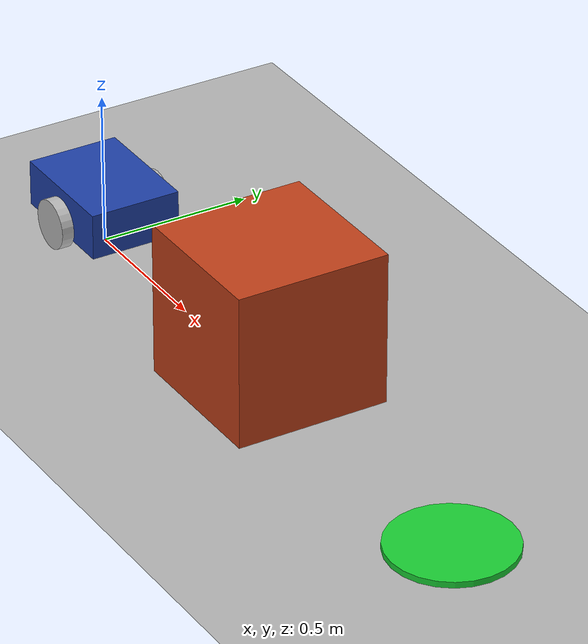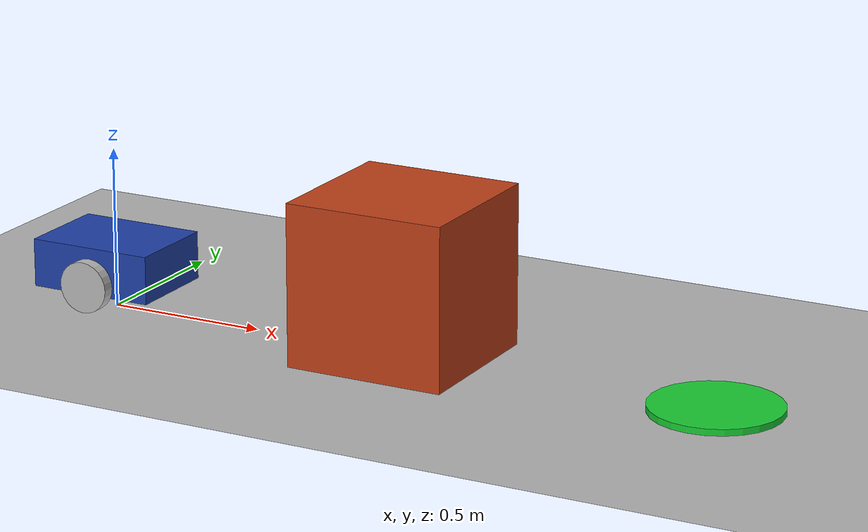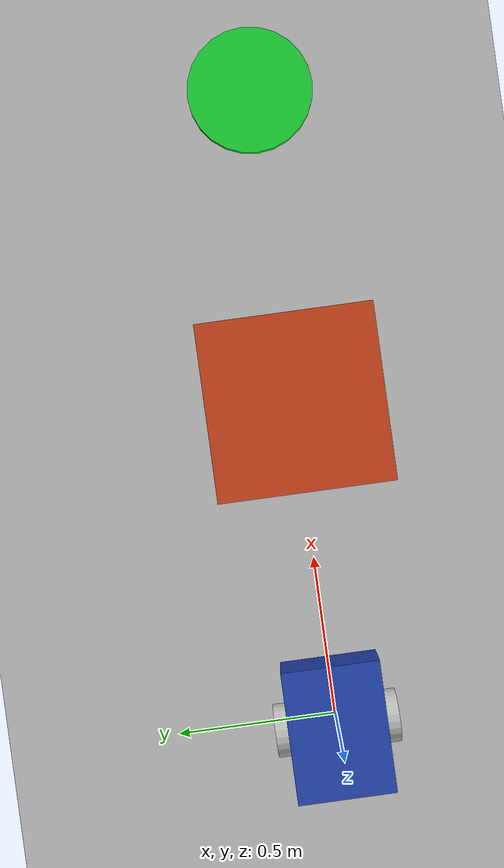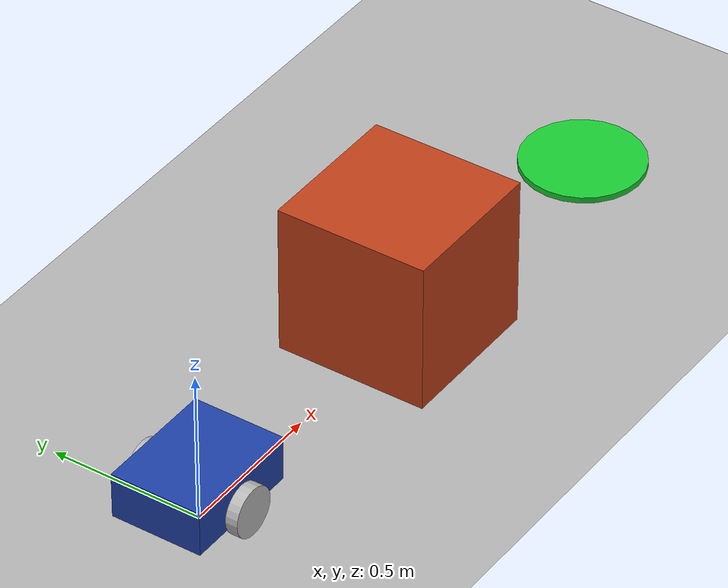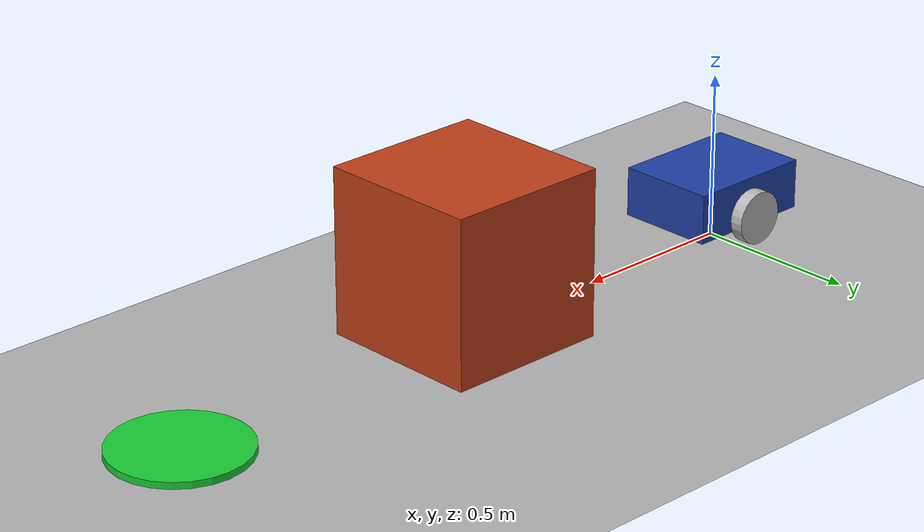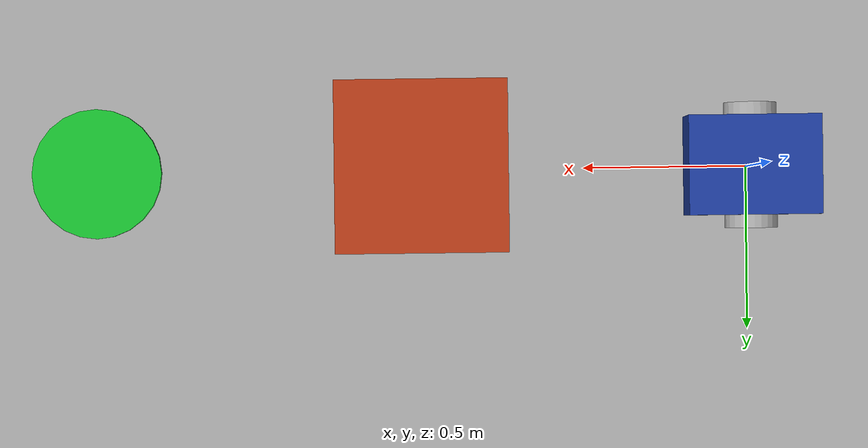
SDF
<?xml version="1.0" ?>
<sdf version="1.9">
  <world name="synapse_navigation">
    <plugin filename="gz-sim-physics-system" name="gz::sim::systems::Physics"/>
    <plugin filename="gz-sim-user-commands-system" name="gz::sim::systems::UserCommands"/>
    <plugin filename="gz-sim-scene-broadcaster-system" name="gz::sim::systems::SceneBroadcaster"/>
    <plugin filename="gz-sim-sensors-system" name="gz::sim::systems::Sensors">
      <render_engine>ogre2</render_engine>
    </plugin>

    <gravity>0 0 -9.8</gravity>
    <physics name="step" type="ignored">
      <max_step_size>0.001</max_step_size>
      <real_time_factor>1.0</real_time_factor>
    </physics>

    <light name="sun" type="directional">
      <cast_shadows>true</cast_shadows>
      <pose>0 0 10 0 0 0</pose>
      <diffuse>0.8 0.8 0.8 1</diffuse>
      <specular>0.2 0.2 0.2 1</specular>
      <direction>-0.5 0.1 -0.9</direction>
    </light>

    <model name="ground">
      <static>true</static>
      <link name="ground_link">
        <collision name="collision">
          <geometry><plane><normal>0 0 1</normal><size>20 20</size></plane></geometry>
        </collision>
        <visual name="visual">
          <geometry><plane><normal>0 0 1</normal><size>20 20</size></plane></geometry>
          <material><diffuse>0.7 0.7 0.7 1</diffuse></material>
        </visual>
      </link>
    </model>

    <model name="crate">
      <static>true</static>
      <pose>1 0 0.25 0 0 0</pose>
      <link name="crate_link">
        <collision name="collision">
          <geometry><box><size>0.5 0.5 0.5</size></box></geometry>
        </collision>
        <visual name="visual">
          <geometry><box><size>0.5 0.5 0.5</size></box></geometry>
          <material><diffuse>0.75 0.25 0.1 1</diffuse></material>
        </visual>
      </link>
    </model>

    <model name="goal">
      <static>true</static>
      <pose>2 0 0.01 0 0 0</pose>
      <link name="goal_link">
        <visual name="visual">
          <geometry><cylinder><radius>0.2</radius><length>0.02</length></cylinder></geometry>
          <material><diffuse>0.1 0.8 0.2 1</diffuse><emissive>0.05 0.4 0.1 1</emissive></material>
        </visual>
      </link>
    </model>

    <model name="synapse_bot">
      <pose>0 0 0.15 0 0 0</pose>
      <link name="base_link">
        <inertial><mass>5</mass><inertia><ixx>0.05</ixx><iyy>0.08</iyy><izz>0.1</izz></inertia></inertial>
        <collision name="collision"><geometry><box><size>0.4 0.3 0.15</size></box></geometry></collision>
        <visual name="visual">
          <geometry><box><size>0.4 0.3 0.15</size></box></geometry>
          <material><diffuse>0.12 0.25 0.65 1</diffuse></material>
        </visual>
      </link>

      <link name="left_wheel">
        <pose relative_to="base_link">0 0.17 -0.04 1.5708 0 0</pose>
        <inertial><mass>0.3</mass><inertia><ixx>0.001</ixx><iyy>0.001</iyy><izz>0.001</izz></inertia></inertial>
        <collision name="collision"><geometry><cylinder><radius>0.08</radius><length>0.04</length></cylinder></geometry></collision>
        <visual name="visual"><geometry><cylinder><radius>0.08</radius><length>0.04</length></cylinder></geometry></visual>
      </link>
      <link name="right_wheel">
        <pose relative_to="base_link">0 -0.17 -0.04 1.5708 0 0</pose>
        <inertial><mass>0.3</mass><inertia><ixx>0.001</ixx><iyy>0.001</iyy><izz>0.001</izz></inertia></inertial>
        <collision name="collision"><geometry><cylinder><radius>0.08</radius><length>0.04</length></cylinder></geometry></collision>
        <visual name="visual"><geometry><cylinder><radius>0.08</radius><length>0.04</length></cylinder></geometry></visual>
      </link>
      <joint name="left_wheel_joint" type="revolute">
        <parent>base_link</parent><child>left_wheel</child><axis><xyz>0 1 0</xyz></axis>
      </joint>
      <joint name="right_wheel_joint" type="revolute">
        <parent>base_link</parent><child>right_wheel</child><axis><xyz>0 1 0</xyz></axis>
      </joint>

      <link name="caster">
        <pose relative_to="base_link">-0.14 0 -0.075 0 0 0</pose>
        <inertial><mass>0.1</mass><inertia><ixx>0.0001</ixx><iyy>0.0001</iyy><izz>0.0001</izz></inertia></inertial>
        <collision name="collision"><geometry><sphere><radius>0.035</radius></sphere></geometry></collision>
        <visual name="visual"><geometry><sphere><radius>0.035</radius></sphere></geometry></visual>
      </link>
      <joint name="caster_joint" type="fixed"><parent>base_link</parent><child>caster</child></joint>

      <link name="camera_link">
        <pose relative_to="base_link">0.2 0 0.12 0 0 0</pose>
        <inertial><mass>0.05</mass><inertia><ixx>0.0001</ixx><iyy>0.0001</iyy><izz>0.0001</izz></inertia></inertial>
        <sensor name="front_camera" type="camera">
          <topic>/camera/image_raw</topic><gz_frame_id>camera_link</gz_frame_id><update_rate>10</update_rate>
          <camera><horizontal_fov>1.047</horizontal_fov><image><width>64</width><height>48</height><format>R8G8B8</format></image><clip><near>0.05</near><far>10</far></clip></camera>
        </sensor>
      </link>
      <joint name="camera_joint" type="fixed"><parent>base_link</parent><child>camera_link</child></joint>

      <plugin filename="gz-sim-diff-drive-system" name="gz::sim::systems::DiffDrive">
        <left_joint>left_wheel_joint</left_joint><right_joint>right_wheel_joint</right_joint>
        <wheel_separation>0.34</wheel_separation><wheel_radius>0.08</wheel_radius>
        <topic>/model/synapse_bot/cmd_vel</topic>
        <odom_topic>/model/synapse_bot/odometry</odom_topic><odom_publish_frequency>20</odom_publish_frequency>
      </plugin>
    </model>
  </world>
</sdf>
